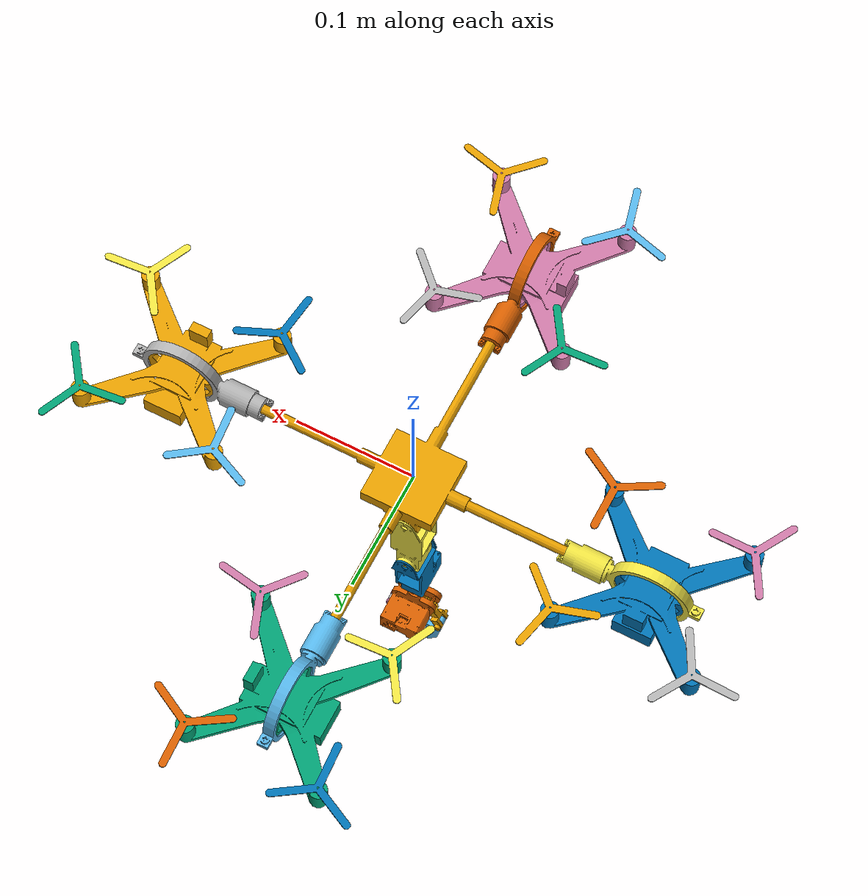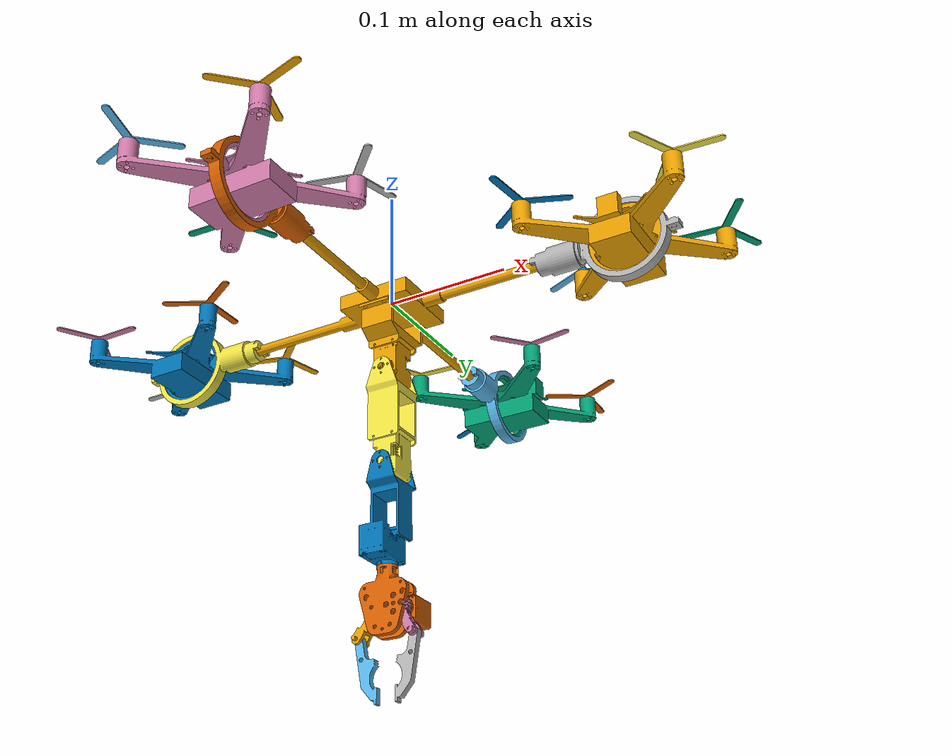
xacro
<?xml version='1.0' encoding='UTF-8'?>
<robot xmlns:xacro="http://ros.org/wiki/xacro" name="uam_env">
  <xacro:include filename="$(find vkc_example)/urdf/deploy_uam.urdf.xacro" />

  <!-- Arguments -->
  <xacro:arg name="x" default="0.0"/>
  <xacro:arg name="y" default="0.0"/>
  <xacro:arg name="z" default="0.0"/>

  <!-- Setup Environment -->
  <link name="world"/>
  <xacro:deploy prefix="" attach_to_world="true" x="$(arg x)" y="$(arg y)" z="$(arg z)"/>

</robot>

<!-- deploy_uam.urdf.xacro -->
<robot name="deploy_uam" xmlns:xacro="http://www.ros.org/wiki/xacro">

    <xacro:include filename="$(find aerialvkc_v3000_description)/urdf/aerialvkc_v3000_description_simplify.urdf.xacro" />

    <xacro:macro name="deploy" params="prefix attach_to_world x y z">

        <!-- Virtual Link Starts -->
        <link name="${prefix}virtual_base_x" />
        <link name="${prefix}virtual_base_y" />
        <link name="${prefix}virtual_base_z" />
        <link name="${prefix}virtual_base_roll" />
        <link name="${prefix}virtual_base_pitch" />
        <link name="${prefix}virtual_base_yaw" />

        <!-- Virtual Link Ends -->

        <joint name="${prefix}base_link_base_yaw" type="revolute">
            <parent link="${prefix}virtual_base_yaw" />
            <origin xyz="0.0 0.0 0.0" rpy="0 0 0" />
            <child link="base_link" />
            <axis xyz="0 0 1" />
            <limit effort="20" velocity="5.0" lower="-3.14" upper="3.14" />
        </joint>

        <joint name="${prefix}base_yaw_base_pitch" type="revolute">
            <parent link="${prefix}virtual_base_pitch" />
            <origin xyz="0.0 0.0 0.0" rpy="0 0 0" />
            <child link="${prefix}virtual_base_yaw" />
            <axis xyz="0 1 0" />
            <limit effort="20" velocity="5.0" lower="-3.14" upper="3.14" />
        </joint>

        <joint name="${prefix}base_pitch_base_roll" type="revolute">
            <parent link="${prefix}virtual_base_roll" />
            <origin xyz="0.0 0.0 0.0" rpy="0 0 0" />
            <child link="${prefix}virtual_base_pitch" />
            <axis xyz="1 0 0" />
            <limit effort="20" velocity="5.0" lower="-3.14" upper="3.14" />
        </joint>

        <joint name="${prefix}base_roll_base_z" type="prismatic">
            <parent link="${prefix}virtual_base_z" />
            <origin xyz="0.0 0.0 0.0" rpy="0 0 0" />
            <child link="${prefix}virtual_base_roll" />
            <axis xyz="0 0 1" />
            <limit effort="20" velocity="5.0" lower="-10" upper="10" />
        </joint>

        <joint name="${prefix}base_z_base_y" type="prismatic">
            <parent link="${prefix}virtual_base_y" />
            <origin xyz="0.0 0.0 0.0" rpy="0 0 0" />
            <child link="${prefix}virtual_base_z" />
            <axis xyz="0 1 0" />
            <limit effort="20" velocity="5.0" lower="-10" upper="10" />
        </joint>

        <joint name="${prefix}base_y_base_x" type="prismatic">
            <parent link="${prefix}virtual_base_x" />
            <origin xyz="0.0 0.0 0.0" rpy="0 0 0" />
            <child link="${prefix}virtual_base_y" />
            <axis xyz="1 0 0" />
            <limit effort="20" velocity="5.0" lower="-10" upper="10" />
        </joint>

        <xacro:if value="${attach_to_world}">
            <joint name="${prefix}world" type="fixed">
                <child link="${prefix}virtual_base_x" />
                <parent link="world" />
                <origin xyz="${x} ${y} ${z}" rpy="0 0 0" />
            </joint>
        </xacro:if>

    </xacro:macro>
</robot>

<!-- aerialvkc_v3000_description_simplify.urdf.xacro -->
<robot name="aerialvkc_v3000_description" xmlns:xacro="http://ros.org/wiki/xacro">

  <link name="base_link">
    <inertial>
      <origin xyz="1.48132749672181E-06 -0.000128518507548026 -0.0186756580403975" rpy="0 0 0" />
      <mass value="0.0852219238436207" />
      <inertia ixx="2.92200472097296E-05" ixy="-8.40191538166482E-11" ixz="1.3785811308194E-09" iyy="2.73759047460707E-05" iyz="-2.65992896723796E-09" izz="5.10775637259083E-05" />
    </inertial>
    <visual>
      <origin xyz="0 0 0" rpy="0 0 0" />
      <geometry>
        <mesh filename="package://aerialvkc_v3000_description/meshes/base_link.STL" />
      </geometry>
    </visual>
    <collision>
      <origin xyz="0 0 -0.03" rpy="0 0 0" />
      <geometry>
        <box size="0.07 0.07 0.07" />
      </geometry>
    </collision>
  </link>

  <link name="hinge_link_I">
    <inertial>
      <origin xyz="-0.0286920658868101 -2.09776640502923E-12 0.000129765701351203" rpy="0 0 0" />
      <mass value="0.0180481140635355" />
      <inertia ixx="1.14996315873899E-06" ixy="-2.80155247515752E-16" ixz="-4.90018086254004E-14" iyy="4.77573925274109E-06" iyz="-2.69085765053552E-14" izz="4.43859152295461E-06" />
    </inertial>
    <visual>
      <origin xyz="0 0 0" rpy="0 0 0" />
      <geometry>
        <mesh filename="package://aerialvkc_v3000_description/meshes/hinge_link_I.STL" />
      </geometry>
    </visual>
  </link>

  <joint name="hinge_joint_I" type="fixed">
    <origin xyz="0 0.200000000000009 -0.00599999999999989" rpy="0 0 1.5707963267949" />
    <parent link="base_link" />
    <child link="hinge_link_I" />
    <axis xyz="1 0 0" />
  </joint>

  <link name="crazyflie11/base_link">
    <inertial>
      <origin xyz="4.7277807986898E-05 -0.000242548958398092 -0.00256688589947934" rpy="0 0 0" />
      <mass value="0.0934996333792319" />
      <inertia ixx="4.92603412266741E-05" ixy="-1.92395335842271E-11" ixz="-1.15879177735369E-14" iyy="4.17272140348144E-05" iyz="2.11721011582016E-07" izz="8.39136565814911E-05" />
    </inertial>
    <visual>
      <origin xyz="0 0 0" rpy="0 0 0" />
      <geometry>
        <mesh filename="package://aerialvkc_v3000_description/meshes/crazyflie11/base_link.STL" />
      </geometry>
    </visual>
    <collision>
      <origin xyz="0 0 0" rpy="0 0 0" />
      <geometry>
        <sphere radius="0.12" />
      </geometry>
    </collision>
  </link>
  <joint name="gimbal_joint_I" type="fixed">
    <origin xyz="0 0 0" rpy="0 -0.00405398778622896 0" />
    <parent link="hinge_link_I" />
    <child link="crazyflie11/base_link" />
    <axis xyz="0 -1 0" />
  </joint>
  <link name="prolink_I_I">
    <inertial>
      <origin xyz="1.0547118733939E-14 5.20673305899333E-05 0.000500000000002887" rpy="0 0 0" />
      <mass value="0.000657768846435091" />
      <inertia ixx="1.60093905219262E-07" ixy="3.04402465419514E-22" ixz="1.61145123082987E-22" iyy="1.58813263600953E-07" iyz="-1.81359349302251E-22" izz="3.18797540679143E-07" />
    </inertial>
    <visual>
      <origin xyz="0 0 0" rpy="0 0 0" />
      <geometry>
        <mesh filename="package://aerialvkc_v3000_description/meshes/prolink_I_I.STL" />
      </geometry>
    </visual>
  </link>
  <joint name="projoint_I_I" type="fixed">
    <origin xyz="-0.0580370958807339 0.0555608345534356 0.0210499999999688" rpy="0 0 1.10424755267301" />
    <parent link="crazyflie11/base_link" />
    <child link="prolink_I_I" />
    <axis xyz="0 0 1" />
  </joint>

  <link name="prolink_I_II">
    <inertial>
      <origin xyz="-1.04931939338138E-05 5.09990176109087E-05 0.000500000000002998" rpy="0 0 0" />
      <mass value="0.000657768846435093" />
      <inertia ixx="1.60041892161909E-07" ixy="2.52793844475622E-10" ixz="8.84049279666048E-23" iyy="1.58865276658305E-07" iyz="-7.82978148569725E-23" izz="3.18797540679141E-07" />
    </inertial>
    <visual>
      <origin xyz="0 0 0" rpy="0 0 0" />
      <geometry>
        <mesh filename="package://aerialvkc_v3000_description/meshes/prolink_I_II.STL" />
      </geometry>
    </visual>
  </link>
  <joint name="projoint_I_II" type="fixed">
    <origin xyz="0.0580370958812072 0.0555608345539184 0.0210499999999653" rpy="0 0 -0.663519439198283" />
    <parent link="crazyflie11/base_link" />
    <child link="prolink_I_II" />
    <axis xyz="0 0 1" />
  </joint>
  <link name="prolink_I_III">
    <inertial>
      <origin xyz="-1.90407394590197E-06 5.20325034606868E-05 0.000500000000002554" rpy="0 0 0" />
      <mass value="0.000657768846435069" />
      <inertia ixx="1.60092192585075E-07" ixy="4.6801041599918E-11" ixz="-7.42138109531619E-23" iyy="1.58814976235129E-07" iyz="-5.5524498617622E-23" izz="3.18797540679131E-07" />
    </inertial>
    <visual>
      <origin xyz="0 0 0" rpy="0 0 0" />
      <geometry>
        <mesh filename="package://aerialvkc_v3000_description/meshes/prolink_I_III.STL" />
      </geometry>
    </visual>
  </link>
  <joint name="projoint_I_III" type="fixed">
    <origin xyz="0.0580370958804296 -0.0545608345526662 0.0210500000000247" rpy="0 0 -1.57077530421496" />
    <parent link="crazyflie11/base_link" />
    <child link="prolink_I_III" />
    <axis xyz="0 0 1" />
  </joint>
  <link name="prolink_I_IV">
    <inertial>
      <origin xyz="-2.06085148946045E-14 5.20673305122177E-05 0.000500000000002998" rpy="0 0 0" />
      <mass value="0.000657768846435101" />
      <inertia ixx="1.60093905219265E-07" ixy="-5.29395592033938E-22" ixz="3.44830917858043E-22" iyy="1.58813263600954E-07" iyz="2.25380867526558E-22" izz="3.18797540679146E-07" />
    </inertial>
    <visual>
      <origin xyz="0 0 0" rpy="0 0 0" />
      <geometry>
        <mesh filename="package://aerialvkc_v3000_description/meshes/prolink_I_IV.STL" />
      </geometry>
    </visual>
  </link>
  <joint name="projoint_I_IV" type="fixed">
    <origin xyz="-0.0580370958808196 -0.0545608345536692 0.021050000000026" rpy="0 0 2.97788495714067" />
    <parent link="crazyflie11/base_link" />
    <child link="prolink_I_IV" />
    <axis xyz="0 0 1" />
  </joint>

  <link name="hinge_link_II">
    <inertial>
      <origin xyz="-0.0286920658625174 -6.13620265710324E-13 0.000129766128506792" rpy="0 0 0" />
      <mass value="0.0180481140584542" />
      <inertia ixx="1.1499631662955E-06" ixy="5.61120378748299E-20" ixz="2.47952921767015E-18" iyy="4.77573926634576E-06" iyz="-2.39120533973003E-14" izz="4.43859151899919E-06" />
    </inertial>
    <visual>
      <origin xyz="0 0 0" rpy="0 0 0" />
      <geometry>
        <mesh filename="package://aerialvkc_v3000_description/meshes/hinge_link_II.STL" />
      </geometry>
    </visual>
  </link>
  <joint name="hinge_joint_II" type="fixed">
    <origin xyz="0.199999999999998 0 -0.00600000000000039" rpy="0.0 0 0" />
    <parent link="base_link" />
    <child link="hinge_link_II" />
    <axis xyz="1 0 0" />
  </joint>
  <link name="crazyflie22/base_link">
    <inertial>
      <origin xyz="0.000 -0.000 -0.00" rpy="0 0 0" />
      <mass value="0.0934996333792317" />
      <inertia ixx="4.94987515477189E-05" ixy="-1.75803692106723E-08" ixz="-2.86441417358484E-06" iyy="4.17272140348139E-05" iyz="2.10989852183832E-07" izz="8.36752462604459E-05" />
    </inertial>
    <visual>
      <origin xyz="0 0 0" rpy="0 0 0" />
      <geometry>
        <mesh filename="package://aerialvkc_v3000_description/meshes/crazyflie11/base_link.STL" />
      </geometry>
    </visual>
    <collision>
      <origin xyz="0 0 0" rpy="0 0 0" />
      <geometry>
        <sphere radius="0.12" />
      </geometry>
    </collision>
  </link>
  <joint name="gimbal_joint_II" type="fixed">
    <origin xyz="0 0 0" rpy="0 0 0" />
    <parent link="hinge_link_II" />
    <child link="crazyflie22/base_link" />
    <axis xyz="0 -1 0" />
  </joint>
  <link name="prolink_II_I">
    <inertial>
      <origin xyz="7.51482209793153E-13 -5.20673301678265E-05 0.00049999999979089" rpy="0 0 0" />
      <mass value="0.000657768846435077" />
      <inertia ixx="1.60093905219261E-07" ixy="1.9124415762226E-21" ixz="1.34416849539867E-22" iyy="1.58813263600949E-07" iyz="-3.53619711866419E-22" izz="3.18797540679137E-07" />
    </inertial>
    <visual>
      <origin xyz="0 0 0" rpy="0 0 0" />
      <geometry>
        <mesh filename="package://aerialvkc_v3000_description/meshes/prolink_II_I.STL" />
      </geometry>
    </visual>
  </link>
  <joint name="projoint_II_I" type="fixed">
    <origin xyz="-0.0580370958807339 0.0555608345534356 0.0210499999999688" rpy="0.0 0.0 -1.99713839703144" />
    <parent link="crazyflie22/base_link" />
    <child link="prolink_II_I" />
    <axis xyz="0 0 1" />
  </joint>
  <link name="prolink_II_II">
    <inertial>
      <origin xyz="-5.18683221605309E-05 4.54797229854087E-06 0.000499999999773015" rpy="0 0 0" />
      <mass value="0.000657768846435096" />
      <inertia ixx="1.58823034455358E-07" ixy="1.1143380637116E-10" ixz="7.4032664823496E-23" iyy="1.60084134364856E-07" iyz="-6.82940993239093E-22" izz="3.18797540679142E-07" />
    </inertial>
    <visual>
      <origin xyz="0 0 0" rpy="0 0 0" />
      <geometry>
        <mesh filename="package://aerialvkc_v3000_description/meshes/prolink_II_II.STL" />
      </geometry>
    </visual>
  </link>
  <joint name="projoint_II_II" type="fixed">
    <origin xyz="0.0580370958812072 0.0555608345539184 0.0210499999999653" rpy="0.0 0.0 -1.90396164537388" />
    <parent link="crazyflie22/base_link" />
    <child link="prolink_II_II" />
    <axis xyz="0 0 1" />
  </joint>
  <link name="prolink_II_III">
    <inertial>
      <origin xyz="-2.07419986428536E-05 4.77574748815046E-05 0.000499999999740819" rpy="0 0 0" />
      <mass value="0.000657768846435079" />
      <inertia ixx="1.59890670359717E-07" ixy="4.67938683258318E-10" ixz="-1.84047686293049E-22" iyy="1.59016498460492E-07" iyz="3.83811804224605E-22" izz="3.18797540679136E-07" />
    </inertial>
    <visual>
      <origin xyz="0 0 0" rpy="0 0 0" />
      <geometry>
        <mesh filename="package://aerialvkc_v3000_description/meshes/prolink_II_III.STL" />
      </geometry>
    </visual>
  </link>
  <joint name="projoint_II_III" type="fixed">
    <origin xyz="0.0580370958804296 -0.0545608345526662 0.0210500000000247" rpy="0.0 0.0 -1.90396164537387" />
    <parent link="crazyflie22/base_link" />
    <child link="prolink_II_III" />
    <axis xyz="0 0 1" />
  </joint>
  <link name="prolink_II_IV">
    <inertial>
      <origin xyz="5.09296222228339E-05 1.08249937225136E-05 0.000499999999742429" rpy="0 0 0" />
      <mass value="0.000657768846435079" />
      <inertia ixx="1.58868618017891E-07" ixy="-2.6043244539803E-10" ixz="-2.72969602142499E-23" iyy="1.60038550802321E-07" iyz="-3.76884166594473E-22" izz="3.18797540679139E-07" />
    </inertial>
    <visual>
      <origin xyz="0 0 0" rpy="0 0 0" />
      <geometry>
        <mesh filename="package://aerialvkc_v3000_description/meshes/prolink_II_IV.STL" />
      </geometry>
    </visual>
  </link>
  <joint name="projoint_II_IV" type="fixed">
    <origin xyz="-0.0580370958808196 -0.0545608345536692 0.021050000000026" rpy="0.0 0.0 -1.90396164537389" />
    <parent link="crazyflie22/base_link" />
    <child link="prolink_II_IV" />
    <axis xyz="0 0 1" />
  </joint>

  <link name="hinge_link_III">
    <inertial>
      <origin xyz="-0.0286920658808958 2.18658424699925E-13 0.000129766128801556" rpy="0 0 0" />
      <mass value="0.0180481140621349" />
      <inertia ixx="1.14996316009685E-06" ixy="7.66630253772555E-21" ixz="-8.6233529577341E-19" iyy="4.77573925518498E-06" iyz="-2.63595495794425E-14" izz="4.43859152224334E-06" />
    </inertial>
    <visual>
      <origin xyz="0 0 0" rpy="0 0 0" />
      <geometry>
        <mesh filename="package://aerialvkc_v3000_description/meshes/hinge_link_III.STL" />
      </geometry>
    </visual>
  </link>
  <joint name="hinge_joint_III" type="fixed">
    <origin xyz="0 -0.2 -0.00600000000000006" rpy="0.0 0 -1.5707963267949" />
    <parent link="base_link" />
    <child link="hinge_link_III" />
    <axis xyz="1 0 0" />
  </joint>
  <link name="crazyflie33/base_link">
    <inertial>
      <origin xyz="4.72778079948499E-05 -0.000242548958406419 -0.00256688589947895" rpy="0 0 0" />
      <mass value="0.0934996333792321" />
      <inertia ixx="4.92603412266742E-05" ixy="-1.92395334444135E-11" ixz="-1.15879799245794E-14" iyy="4.17272140348142E-05" iyz="2.11721011560071E-07" izz="8.39136565814913E-05" />
    </inertial>
    <visual>
      <origin xyz="0 0 0" rpy="0 0 0" />
      <geometry>
        <mesh filename="package://aerialvkc_v3000_description/meshes/crazyflie33/base_link.STL" />
      </geometry>
    </visual>
    <collision>
      <origin xyz="0 0 0" rpy="0 0 0" />
      <geometry>
        <sphere radius="0.12" />
      </geometry>
    </collision>
  </link>
  <joint name="gimbal_joint_III" type="fixed">
    <origin xyz="0 0 0" rpy="0 0 0" />
    <parent link="hinge_link_III" />
    <child link="crazyflie33/base_link" />
    <axis xyz="0 -1 0" />
  </joint>
  <link name="prolink_III_I">
    <inertial>
      <origin xyz="-1.7216775078599E-05 -4.9138471421073E-05 0.000499999999804657" rpy="0 0 0" />
      <mass value="0.000657768846435086" />
      <inertia ixx="1.59953881825124E-07" ixy="-3.99641383195494E-10" ixz="-3.58892988271445E-22" iyy="1.58953286995089E-07" iyz="2.06795153138257E-22" izz="3.18797540679141E-07" />
    </inertial>
    <visual>
      <origin xyz="0 0 0" rpy="0 0 0" />
      <geometry>
        <mesh filename="package://aerialvkc_v3000_description/meshes/prolink_III_I.STL" />
      </geometry>
    </visual>
  </link>
  <joint name="projoint_III_I" type="fixed">
    <origin xyz="-0.0580370958826119 0.0555608345531589 0.0210500000001814" rpy="0 0 -1.48966793031658" />
    <parent link="crazyflie33/base_link" />
    <child link="prolink_III_I" />
    <axis xyz="0 0 1" />
  </joint>
  <link name="prolink_III_II">
    <inertial>
      <origin xyz="-4.92400494522816E-05 1.69240829440698E-05 0.000500000000147938" rpy="0 0 0" />
      <mass value="0.000657768846435089" />
      <inertia ixx="1.58948566542123E-07" ixy="3.93659359918973E-10" ixz="-1.14978105144871E-22" iyy="1.59958602278093E-07" iyz="-4.96308367531817E-23" izz="3.18797540679144E-07" />
    </inertial>
    <visual>
      <origin xyz="0 0 0" rpy="0 0 0" />
      <geometry>
        <mesh filename="package://aerialvkc_v3000_description/meshes/prolink_III_II.STL" />
      </geometry>
    </visual>
  </link>
  <joint name="projoint_III_II" type="fixed">
    <origin xyz="0.0580370958807384 0.0555608345530176 0.0210499999999164" rpy="0 0 -1.48966793031658" />
    <parent link="crazyflie33/base_link" />
    <child link="prolink_III_II" />
    <axis xyz="0 0 1" />
  </joint>
  <link name="prolink_III_III">
    <inertial>
      <origin xyz="-8.61076095515223E-06 5.13503811269134E-05 0.000499999999975576" rpy="0 0 0" />
      <mass value="0.000657768846435087" />
      <inertia ixx="1.60058880069487E-07" ixy="2.08872935955854E-10" ixz="-1.69778820726509E-22" iyy="1.58848288750731E-07" iyz="-2.81241408268029E-22" izz="3.18797540679146E-07" />
    </inertial>
    <visual>
      <origin xyz="0 0 0" rpy="0 0 0" />
      <geometry>
        <mesh filename="package://aerialvkc_v3000_description/meshes/prolink_III_III.STL" />
      </geometry>
    </visual>
  </link>
  <joint name="projoint_III_III" type="fixed">
    <origin xyz="0.0580370958809432 -0.0545608345538356 0.0210500000000353" rpy="0 0 -1.4896679303166" />
    <parent link="crazyflie33/base_link" />
    <child link="prolink_III_III" />
    <axis xyz="0 0 1" />
  </joint>
  <link name="prolink_III_IV">
    <inertial>
      <origin xyz="5.20369407975285E-05 -1.77857149941119E-06 0.000500000000126288" rpy="0 0 0" />
      <mass value="0.000657768846435082" />
      <inertia ixx="1.58814757901547E-07" ixy="4.37199107530133E-11" ixz="1.05465528100511E-22" iyy="1.60092410918667E-07" iyz="-5.62482816536059E-23" izz="3.18797540679141E-07" />
    </inertial>
    <visual>
      <origin xyz="0 0 0" rpy="0 0 0" />
      <geometry>
        <mesh filename="package://aerialvkc_v3000_description/meshes/prolink_III_IV.STL" />
      </geometry>
    </visual>
  </link>
  <joint name="projoint_III_IV" type="fixed">
    <origin xyz="-0.0580370958772718 -0.0545608345588964 0.0210499999999432" rpy="0 0 -1.4896679303166" />
    <parent link="crazyflie33/base_link" />
    <child link="prolink_III_IV" />
    <axis xyz="0 0 1" />
  </joint>

  <link name="hinge_link_IV">
    <inertial>
      <origin xyz="-0.0286920658668609 -3.54316576078872E-12 0.000129766128072806" rpy="0 0 0" />
      <mass value="0.0180481140578559" />
      <inertia ixx="1.14996316628649E-06" ixy="7.16390733120724E-19" ixz="1.52650612459364E-17" iyy="4.77573926634852E-06" iyz="-2.381332784271E-14" izz="4.43859151898881E-06" />
    </inertial>
    <visual>
      <origin xyz="0 0 0" rpy="0 0 0" />
      <geometry>
        <mesh filename="package://aerialvkc_v3000_description/meshes/hinge_link_IV.STL" />
      </geometry>
    </visual>
  </link>
  <joint name="hinge_joint_IV" type="fixed">
    <origin xyz="-0.200000000000035 0 -0.00599999999975193" rpy="-0 0 3.14159265358979" />
    <parent link="base_link" />
    <child link="hinge_link_IV" />
    <axis xyz="1 0 0" />
  </joint>
  <link name="crazyflie44/base_link">
    <inertial>
      <origin xyz="0 -0.000 -0.00" rpy="0 0 0" />
      <mass value="0.093499633379232" />
      <inertia ixx="4.92603412266741E-05" ixy="-1.92395335526859E-11" ixz="-1.15881424093215E-14" iyy="4.17272140348142E-05" iyz="2.11721011559999E-07" izz="8.39136565814913E-05" />
    </inertial>
    <visual>
      <origin xyz="0 0 0" rpy="0 0 0" />
      <geometry>
        <mesh filename="package://aerialvkc_v3000_description/meshes/crazyflie44/base_link.STL" />
      </geometry>
    </visual>
    <collision>
      <origin xyz="0 0 0" rpy="0 0 0" />
      <geometry>
        <sphere radius="0.12" />
      </geometry>
    </collision>
  </link>
  <joint name="gimbal_joint_IV" type="fixed">
    <origin xyz="0 0 0" rpy="0 0 0" />
    <parent link="hinge_link_IV" />
    <child link="crazyflie44/base_link" />
    <axis xyz="0 -1 0" />
  </joint>
  <link name="prolink_IV_I">
    <inertial>
      <origin xyz="5.18718707275267E-05 4.50732639226126E-06 0.000499999999348577" rpy="0 0 0" />
      <mass value="0.000657768846435084" />
      <inertia ixx="1.58822860589334E-07" ixy="-1.10445464140219E-10" ixz="2.81241408268029E-23" iyy="1.60084308230878E-07" iyz="-3.14328632770151E-23" izz="3.1879754067914E-07" />
    </inertial>
    <visual>
      <origin xyz="0 0 0" rpy="0 0 0" />
      <geometry>
        <mesh filename="package://aerialvkc_v3000_description/meshes/prolink_IV_I.STL" />
      </geometry>
    </visual>
  </link>
  <joint name="projoint_IV_I" type="fixed">
    <origin xyz="-0.0580370958802715 0.0555608345536603 0.0210500000004409" rpy="0 0 2.52411544180218" />
    <parent link="crazyflie44/base_link" />
    <child link="prolink_IV_I" />
    <axis xyz="0 0 1" />
  </joint>
  <link name="prolink_IV_II">
    <inertial>
      <origin xyz="1.43218770176645E-14 5.20673311954489E-05 0.00049999999919248" rpy="0 0 0" />
      <mass value="0.000657768846435095" />
      <inertia ixx="1.60093905219262E-07" ixy="1.33672386988569E-21" ixz="-2.37400835802719E-22" iyy="1.58813263600953E-07" iyz="-4.08627222601196E-22" izz="3.18797540679143E-07" />
    </inertial>
    <visual>
      <origin xyz="0 0 0" rpy="0 0 0" />
      <geometry>
        <mesh filename="package://aerialvkc_v3000_description/meshes/prolink_IV_II.STL" />
      </geometry>
    </visual>
  </link>
  <joint name="projoint_IV_II" type="fixed">
    <origin xyz="0.0580370958804008 0.055560834553266 0.0210500000006031" rpy="0 0 -0.524851138144808" />
    <parent link="crazyflie44/base_link" />
    <child link="prolink_IV_II" />
    <axis xyz="0 0 1" />
  </joint>
  <link name="prolink_IV_III">
    <inertial>
      <origin xyz="1.14130926931466E-13 -5.2067330308353E-05 0.000499999999279688" rpy="0 0 0" />
      <mass value="0.000657768846435072" />
      <inertia ixx="1.60093905219258E-07" ixy="1.62127400060393E-21" ixz="1.05879118406788E-22" iyy="1.5881326360095E-07" iyz="1.82289927491373E-22" izz="3.18797540679136E-07" />
    </inertial>
    <visual>
      <origin xyz="0 0 0" rpy="0 0 0" />
      <geometry>
        <mesh filename="package://aerialvkc_v3000_description/meshes/prolink_IV_III.STL" />
      </geometry>
    </visual>
  </link>
  <joint name="projoint_IV_III" type="fixed">
    <origin xyz="0.0580370958809931 -0.054560834553372 0.0210500000005089" rpy="0 0 1.54314227197888" />
    <parent link="crazyflie44/base_link" />
    <child link="prolink_IV_III" />
    <axis xyz="0 0 1" />
  </joint>
  <link name="prolink_IV_IV">
    <inertial>
      <origin xyz="-1.97721250466132E-05 4.81671045164389E-05 0.000499999999435286" rpy="0 0 0" />
      <mass value="0.000657768846435079" />
      <inertia ixx="1.59909232099247E-07" ixy="4.49884342933237E-10" ixz="-6.61744490042422E-23" iyy="1.58997936720964E-07" iyz="6.61744490042422E-24" izz="3.18797540679139E-07" />
    </inertial>
    <visual>
      <origin xyz="0 0 0" rpy="0 0 0" />
      <geometry>
        <mesh filename="package://aerialvkc_v3000_description/meshes/prolink_IV_IV.STL" />
      </geometry>
    </visual>
  </link>
  <joint name="projoint_IV_IV" type="fixed">
    <origin xyz="-0.058037095880834 -0.0545608345535001 0.0210500000003528" rpy="0 0 2.52411544180219" />
    <parent link="crazyflie44/base_link" />
    <child link="prolink_IV_IV" />
    <axis xyz="0 0 1" />
  </joint>

  <!-- IMU link -->
  <link name="crazyjack/imugt_link">
    <inertial>
      <inertia ixx="0.0000001" ixy="0.0" ixz="0.0" iyy="0.0000001" iyz="0.0" izz="0.0000001" />
      <mass value="1e-05" />
      <!-- [kg] -->
      <origin rpy="0 0 0" xyz="0 0 0" />
    </inertial>
  </link>
  <!-- IMU joint -->
  <joint name="crazyjack/imugt_joint" type="revolute">
    <origin rpy="0 0 0" xyz="0 0 0" />
    <parent link="base_link" />
    <child link="crazyjack/imugt_link" />
    <limit effort="0" lower="0" upper="0" velocity="0" />
  </joint>

  <!-- odometry link -->
  <link name="crazyjack/odometry_sensorgt_link">
    <inertial>
      <inertia ixx="0.0000001" ixy="0.0" ixz="0.0" iyy="0.0000001" iyz="0.0" izz="0.0000001" />
      <mass value="1e-05" />
      <!-- [kg] -->
    </inertial>
  </link>
  <!-- odometry joint -->
  <joint name="crazyjack/odometry_sensorgt_joint" type="revolute">
    <parent link="base_link" />
    <origin rpy="0.0 0.0 0.0" xyz="0.0 0.0 0.0" />
    <child link="crazyjack/odometry_sensorgt_link" />
    <limit effort="0" lower="0" upper="0" velocity="0" />
  </joint>

  <link name="arm_link_I">
    <inertial>
      <origin xyz="0.05253602024707 -4.57926109589946E-06 -0.0168972921267843" rpy="0 0 0" />
      <mass value="0.0275681136662095" />
      <inertia ixx="2.72070258102073E-06" ixy="1.37858107076687E-09" ixz="2.65992896154086E-09" iyy="5.941459455612E-06" iyz="8.40191538528037E-11" izz="5.56952222893338E-06" />
    </inertial>
    <visual>
      <origin xyz="0 0 0" rpy="0 0 0" />
      <geometry>
        <mesh filename="package://aerialvkc_v3000_description/meshes/arm_link_I.STL" />
      </geometry>
    </visual>
    <collision>
      <origin xyz="0.04 0 -0.015" rpy="0 0 0" />
      <geometry>
        <box size="0.09 0.04 0.04" />
      </geometry>
    </collision>
  </link>
  <joint name="arm_joint_I" type="revolute">
    <origin xyz="0 -0.0171000000000001 -0.0640000000000012" rpy="-1.5707963267949 1.5707963267949 3.14159265358979" />
    <parent link="base_link" />
    <child link="arm_link_I" />
    <axis xyz="0 0 -1" />
    <limit effort="30" lower="-1.57" upper="1.57" velocity="10" />
  </joint>

  <link name="arm_link_II">
    <inertial>
      <origin xyz="0.0522490225899118 2.93617788832412E-06 0.0088589356221796" rpy="0 0 0" />
      <mass value="0.0244066118573224" />
      <inertia ixx="3.05584899796754E-06" ixy="-8.40195027234299E-11" ixz="-1.81948675529431E-09" iyy="4.45896939288554E-06" iyz="1.37858045352126E-09" izz="3.54593627656304E-06" />
    </inertial>
    <visual>
      <origin xyz="0 0 0" rpy="0 0 0" />
      <geometry>
        <mesh filename="package://aerialvkc_v3000_description/meshes/arm_link_II.STL" />
      </geometry>
    </visual>
    <collision>
      <origin xyz="0.04 0 0.015" rpy="0 0 0" />
      <geometry>
        <box size="0.09 0.04 0.04" />
      </geometry>
    </collision>
  </link>
  <joint name="arm_joint_II" type="revolute">
    <origin xyz="0.0795000000000011 0 0.000599999999999989" rpy="3.14159265358979 0 0" />
    <parent link="arm_link_I" />
    <child link="arm_link_II" />
    <axis xyz="0 0 1" />
    <limit effort="30" lower="-1.57" upper="1.57" velocity="10" />
  </joint>

  <link name="gripper_base_link">
    <inertial>
      <origin xyz="-0.0288543831041018 0.0102193705656141 -0.000533524657248041" rpy="0 0 0" />
      <mass value="0.0269390656546595" />
      <inertia ixx="2.71855561283908E-06" ixy="-2.25698658019009E-08" ixz="6.35938766446021E-08" iyy="4.83739569817908E-06" iyz="-4.7376840769291E-08" izz="3.12049324623483E-06" />
    </inertial>
    <visual>
      <origin xyz="0 0 0" rpy="0 0 0" />
      <geometry>
        <mesh filename="package://aerialvkc_v3000_description/meshes/gripper_base_link.STL" />
      </geometry>
    </visual>
    <collision>
      <origin xyz="-0.05 0.01 0" rpy="0 0 0" />
      <geometry>
        <box size="0.1 0.04 0.06" />
      </geometry>
    </collision>
  </link>
  <joint name="gripper_base_joint" type="revolute">
    <origin xyz="0.081 0 0.0115" rpy="1.58355301227902 0 3.14159265358979" />
    <parent link="arm_link_II" />
    <child link="gripper_base_link" />
    <axis xyz="1 0 0" />
    <limit effort="30" lower="-3.14" upper="3.14" velocity="10" />
  </joint>

  <link name="gear_arm_link_I">
    <inertial>
      <origin xyz="0.00267731882910643 0.0106438174366791 0.00892931899279378" rpy="0 0 0" />
      <mass value="0.00349672383608932" />
      <inertia ixx="2.42592643014622E-07" ixy="-6.33345976947497E-09" ixz="-5.31056533536211E-09" iyy="1.67231621577249E-07" iyz="-8.94608332147827E-08" izz="1.98724712665995E-07" />
    </inertial>
    <visual>
      <origin xyz="0 0 0" rpy="0 0 0" />
      <geometry>
        <mesh filename="package://aerialvkc_v3000_description/meshes/gear_arm_link_I.STL" />
      </geometry>
    </visual>
  </link>
  <joint name="gear_arm_joint_I" type="continuous">
    <origin xyz="-0.0309999999998418 0.00250000000000006 -0.00899999999985582" rpy="3.00938329599883 0 -1.5707963267949" />
    <parent link="gripper_base_link" />
    <child link="gear_arm_link_I" />
    <axis xyz="-1 0 0" />
  </joint>

  <link name="gripper_arm_link_I">
    <inertial>
      <origin xyz="0.00197818578094229 0.00274999999999997 -0.023361329516465" rpy="0 0 0" />
      <mass value="0.00213978898611195" />
      <inertia ixx="3.67965569591137E-07" ixy="3.39144051146741E-23" ixz="3.13636809696129E-08" iyy="3.85107682847711E-07" iyz="-1.95266323350799E-22" izz="2.79302160615542E-08" />
    </inertial>
    <visual>
      <origin xyz="0 0 0" rpy="0 0 0" />
      <geometry>
        <mesh filename="package://aerialvkc_v3000_description/meshes/gripper_arm_link_I.STL" />
      </geometry>
    </visual>
  </link>
  <joint name="gripper_arm_joint_I" type="continuous">
    <origin xyz="-0.0005 0.0191511113728454 0.0160696904896308" rpy="0 1.53958298448806 -1.57079632679495" />
    <parent link="gear_arm_link_I" />
    <child link="gripper_arm_link_I" />
    <axis xyz="0 -1 0" />
  </joint>

  <link name="gear_arm_link_II">
    <inertial>
      <origin xyz="0.00195026912579577 0.0125207003204885 0.00723101715979743" rpy="0 0 0" />
      <mass value="0.00335826751583657" />
      <inertia ixx="2.34194097650031E-07" ixy="1.78464217158316E-22" ixz="2.45259051621973E-22" iyy="1.32114929674718E-07" iyz="-7.58361620076075E-08" izz="2.19682282962741E-07" />
    </inertial>
    <visual>
      <origin xyz="0 0 0" rpy="0 0 0" />
      <geometry>
        <mesh filename="package://aerialvkc_v3000_description/meshes/gear_arm_link_II.STL" />
      </geometry>
    </visual>
  </link>
  <joint name="gear_arm_joint_II" type="continuous">
    <origin xyz="-0.031000000001165 0.00250000000000017 0.00899999999958237" rpy="2.0379809891575 0 -1.5707963267949" />
    <parent link="gripper_base_link" />
    <child link="gear_arm_link_II" />
    <axis xyz="1 0 0" />
  </joint>

  <link name="gripper_arm_link_II">
    <inertial>
      <origin xyz="0.00197818578094229 0.00275000000000003 -0.0233613295164651" rpy="0 0 0" />
      <mass value="0.00213978898611195" />
      <inertia ixx="3.67965569591137E-07" ixy="-2.60561892954204E-23" ixz="3.13636809696127E-08" iyy="3.8510768284771E-07" iyz="1.64427996139057E-22" izz="2.79302160615542E-08" />
    </inertial>
    <visual>
      <origin xyz="0 0 0" rpy="0 0 0" />
      <geometry>
        <mesh filename="package://aerialvkc_v3000_description/meshes/gripper_arm_link_II.STL" />
      </geometry>
    </visual>
  </link>
  <joint name="gripper_arm_joint_II" type="continuous">
    <origin xyz="0.00499999999999989 0.0216506350944628 0.0124999999987991" rpy="3.14159265358979 -0.303258744156093 -1.57079632679489" />
    <parent link="gear_arm_link_II" />
    <child link="gripper_arm_link_II" />
    <axis xyz="0 -1 0" />
  </joint>

</robot>
